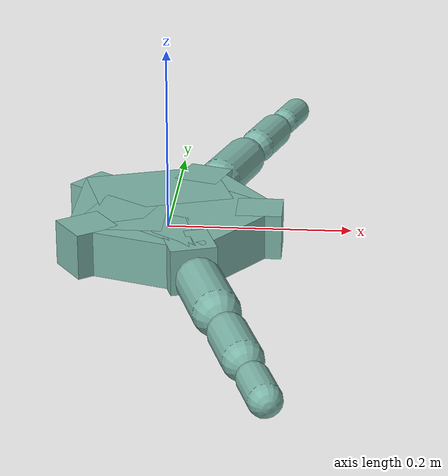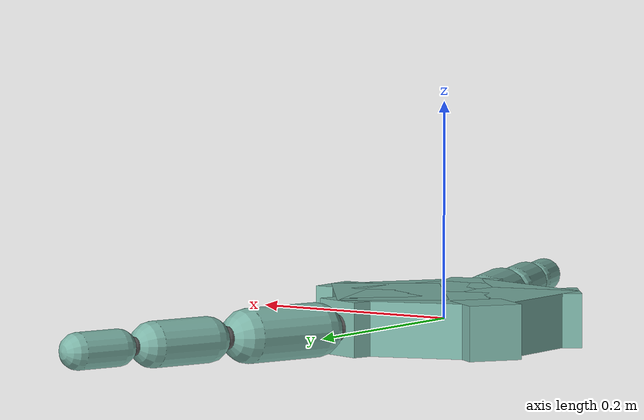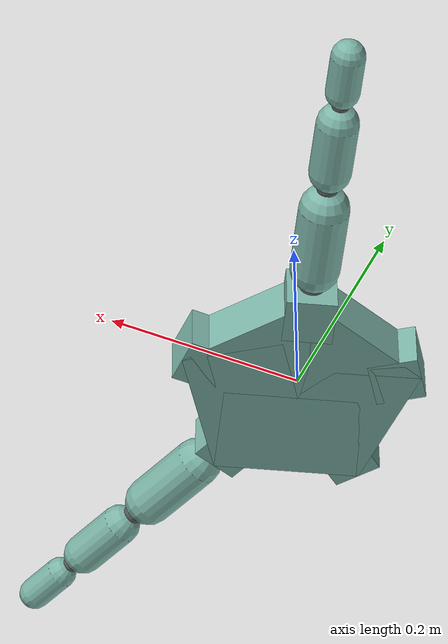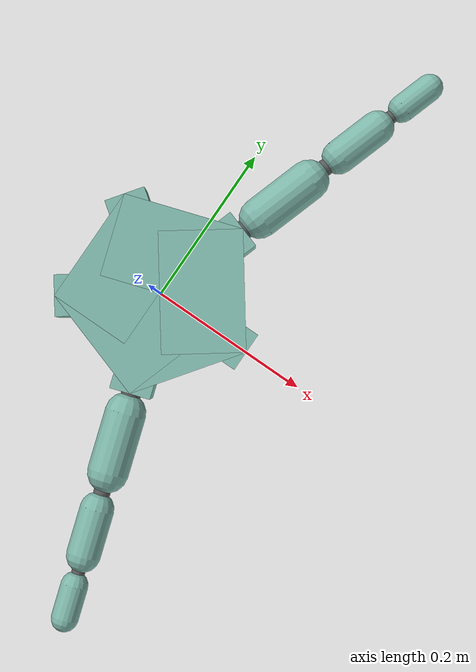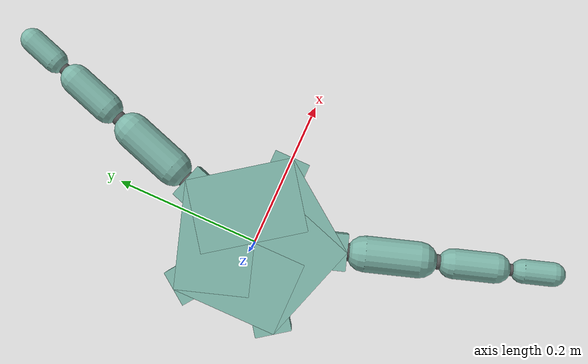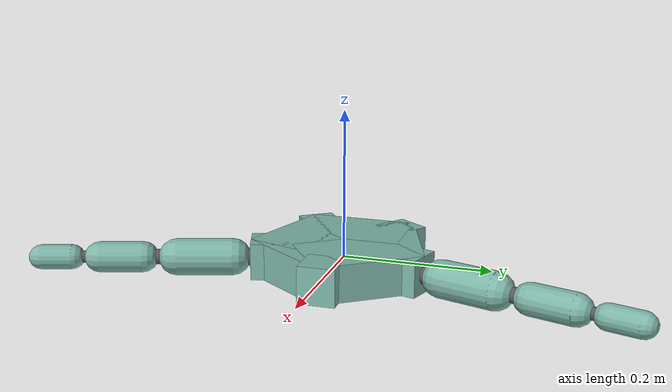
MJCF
<mujoco model="BrittleStarMorphology">
  <compiler angle="radian"/>
  <option density="1000" viscosity="0.00089999999999999998"/>
  <visual>
    <headlight ambient="0.40000000000000002 0.40000000000000002 0.40000000000000002" diffuse="0.80000000000000004 0.80000000000000004 0.80000000000000004" specular="0.10000000000000001 0.10000000000000001 0.10000000000000001"/>
  </visual>
  <default>
    <default class="/">
      <geom contype="1" conaffinity="0" condim="4" density="2000"/>
    </default>
  </default>
  <worldbody>
    <body name="central_disk" pos="0 0 0" euler="0 0 0">
      <geom name="central_disk_pentagon_side_0" class="/" type="box" contype="0" conaffinity="0" size="0.050563562148434216 0.073473156536559142 0.025000000000000001" rgba="0.49019607843137253 0.70980392156862748 0.6588235294117647 1" mass="0" pos="0.040906781074217108 0.029720516134223551 0" euler="0 0 0.62831853071795862"/>
      <geom name="central_disk_pentagon_side_1" class="/" type="box" contype="0" conaffinity="0" size="0.050563562148434216 0.073473156536559142 0.025000000000000001" rgba="0.49019607843137253 0.70980392156862748 0.6588235294117647 1" mass="0" pos="-0.015624999999999997 0.048088805268363337 0" euler="0 0 1.8849555921538759"/>
      <geom name="central_disk_pentagon_side_2" class="/" type="box" contype="0" conaffinity="0" size="0.050563562148434216 0.073473156536559142 0.025000000000000001" rgba="0.49019607843137253 0.70980392156862748 0.6588235294117647 1" mass="0" pos="-0.050563562148434216 6.1922504538568225e-18 0" euler="0 0 3.1415926535897931"/>
      <geom name="central_disk_pentagon_side_3" class="/" type="box" contype="0" conaffinity="0" size="0.050563562148434216 0.073473156536559142 0.025000000000000001" rgba="0.49019607843137253 0.70980392156862748 0.6588235294117647 1" mass="0" pos="-0.015625000000000007 -0.048088805268363337 0" euler="0 0 4.3982297150257104"/>
      <geom name="central_disk_pentagon_side_4" class="/" type="box" contype="0" conaffinity="0" size="0.050563562148434216 0.073473156536559142 0.025000000000000001" rgba="0.49019607843137253 0.70980392156862748 0.6588235294117647 1" mass="0" pos="0.040906781074217101 -0.029720516134223562 0" euler="0 0 5.6548667764616276"/>
      <geom name="central_disk_pentagon_collider" class="/" type="cylinder" contype="1" conaffinity="0" size="0.125 0.025000000000000001" rgba="0 0 0 0" pos="0 0 0" euler="0 0 0"/>
      <geom name="central_disk_arm_connector_0" class="/" type="box" contype="0" conaffinity="0" size="0.025000000000000001 0.025000000000000001 0.025000000000000001" rgba="0.49019607843137253 0.70980392156862748 0.6588235294117647 1" pos="0.10000000000000001 0 0" euler="0 0 0"/>
      <geom name="central_disk_arm_connector_1" class="/" type="box" contype="0" conaffinity="0" size="0.025000000000000001 0.025000000000000001 0.025000000000000001" rgba="0.49019607843137253 0.70980392156862748 0.6588235294117647 1" pos="0.030901699437494747 0.095105651629515356 0" euler="0 0 1.2566370614359172"/>
      <geom name="central_disk_arm_connector_2" class="/" type="box" contype="0" conaffinity="0" size="0.025000000000000001 0.025000000000000001 0.025000000000000001" rgba="0.49019607843137253 0.70980392156862748 0.6588235294117647 1" pos="-0.080901699437494742 0.058778525229247328 0" euler="0 0 2.5132741228718345"/>
      <geom name="central_disk_arm_connector_3" class="/" type="box" contype="0" conaffinity="0" size="0.025000000000000001 0.025000000000000001 0.025000000000000001" rgba="0.49019607843137253 0.70980392156862748 0.6588235294117647 1" pos="-0.080901699437494756 -0.058778525229247307 0" euler="0 0 3.7699111843077517"/>
      <geom name="central_disk_arm_connector_4" class="/" type="box" contype="0" conaffinity="0" size="0.025000000000000001 0.025000000000000001 0.025000000000000001" rgba="0.49019607843137253 0.70980392156862748 0.6588235294117647 1" pos="0.030901699437494726 -0.09510565162951537 0" euler="0 0 5.026548245743669"/>
      <body name="arm_0" pos="0.125 0 0" euler="0 0 0"/>
      <body name="arm_1" pos="0.038627124296868431 0.11888206453689419 0" euler="0 0 1.2566370614359172">
        <body name="arm_1_segment_0" pos="0 0 0" euler="0 0 0">
          <geom name="arm_1_segment_0_capsule" class="/" type="capsule" size="0.025000000000000001 0.037499999999999999" rgba="0.49019607843137253 0.70980392156862748 0.6588235294117647 1" pos="0.0625 0 0" euler="0 1.5707963267948966 0"/>
          <geom name="arm_1_segment_0_connector" class="/" type="sphere" contype="0" conaffinity="0" size="0.012500000000000001" rgba="0.34901960784313724 0.34901960784313724 0.34901960784313724 1" pos="0 0 0"/>
          <joint name="arm_1_segment_0_in_plane_joint" class="/" type="hinge" axis="0 0 1" limited="true" stiffness="0.01" range="-0.52359877559829882 0.52359877559829882" armature="0.02" damping="0.10000000000000001"/>
          <joint name="arm_1_segment_0_out_of_plane_joint" class="/" type="hinge" axis="0 -1 0" limited="true" stiffness="0.01" range="-0.52359877559829882 0.52359877559829882" armature="0.02" damping="0.10000000000000001"/>
          <site name="arm_1_segment_0_contact_site" class="/" type="capsule" group="3" rgba="0.71764705882352942 0.33725490196078434 0.34901960784313724 0.5" size="0.025250000000000002 0.037499999999999999" pos="0.0625 0 0" euler="0 1.5707963267948966 0"/>
          <body name="arm_1_segment_1" pos="0.125 0 0" euler="0 0 0">
            <geom name="arm_1_segment_1_capsule" class="/" type="capsule" size="0.020833333333333336 0.029166666666666667" rgba="0.49019607843137253 0.70980392156862748 0.6588235294117647 1" pos="0.050000000000000003 0 0" euler="0 1.5707963267948966 0"/>
            <geom name="arm_1_segment_1_connector" class="/" type="sphere" contype="0" conaffinity="0" size="0.010416666666666668" rgba="0.34901960784313724 0.34901960784313724 0.34901960784313724 1" pos="0 0 0"/>
            <joint name="arm_1_segment_1_in_plane_joint" class="/" type="hinge" axis="0 0 1" limited="true" stiffness="0.01" range="-0.52359877559829882 0.52359877559829882" armature="0.02" damping="0.10000000000000001"/>
            <joint name="arm_1_segment_1_out_of_plane_joint" class="/" type="hinge" axis="0 -1 0" limited="true" stiffness="0.01" range="-0.52359877559829882 0.52359877559829882" armature="0.02" damping="0.10000000000000001"/>
            <site name="arm_1_segment_1_contact_site" class="/" type="capsule" group="3" rgba="0.71764705882352942 0.33725490196078434 0.34901960784313724 0.5" size="0.02104166666666667 0.029166666666666667" pos="0.050000000000000003 0 0" euler="0 1.5707963267948966 0"/>
            <body name="arm_1_segment_2" pos="0.10000000000000001 0 0" euler="0 0 0">
              <geom name="arm_1_segment_2_capsule" class="/" type="capsule" size="0.01666666666666667 0.020833333333333336" rgba="0.49019607843137253 0.70980392156862748 0.6588235294117647 1" pos="0.037500000000000006 0 0" euler="0 1.5707963267948966 0"/>
              <geom name="arm_1_segment_2_connector" class="/" type="sphere" contype="0" conaffinity="0" size="0.008333333333333335" rgba="0.34901960784313724 0.34901960784313724 0.34901960784313724 1" pos="0 0 0"/>
              <joint name="arm_1_segment_2_in_plane_joint" class="/" type="hinge" axis="0 0 1" limited="true" stiffness="0.01" range="-0.52359877559829882 0.52359877559829882" armature="0.02" damping="0.10000000000000001"/>
              <joint name="arm_1_segment_2_out_of_plane_joint" class="/" type="hinge" axis="0 -1 0" limited="true" stiffness="0.01" range="-0.52359877559829882 0.52359877559829882" armature="0.02" damping="0.10000000000000001"/>
              <site name="arm_1_segment_2_contact_site" class="/" type="capsule" group="3" rgba="0.71764705882352942 0.33725490196078434 0.34901960784313724 0.5" size="0.016833333333333336 0.020833333333333336" pos="0.037500000000000006 0 0" euler="0 1.5707963267948966 0"/>
            </body>
          </body>
        </body>
      </body>
      <body name="arm_2" pos="-0.10112712429686842 0.073473156536559156 0" euler="0 0 2.5132741228718345"/>
      <body name="arm_3" pos="-0.10112712429686843 -0.073473156536559128 0" euler="0 0 3.7699111843077517"/>
      <body name="arm_4" pos="0.038627124296868404 -0.11888206453689421 0" euler="0 0 5.026548245743669">
        <body name="arm_4_segment_0" pos="0 0 0" euler="0 0 0">
          <geom name="arm_4_segment_0_capsule" class="/" type="capsule" size="0.025000000000000001 0.037499999999999999" rgba="0.49019607843137253 0.70980392156862748 0.6588235294117647 1" pos="0.0625 0 0" euler="0 1.5707963267948966 0"/>
          <geom name="arm_4_segment_0_connector" class="/" type="sphere" contype="0" conaffinity="0" size="0.012500000000000001" rgba="0.34901960784313724 0.34901960784313724 0.34901960784313724 1" pos="0 0 0"/>
          <joint name="arm_4_segment_0_in_plane_joint" class="/" type="hinge" axis="0 0 1" limited="true" stiffness="0.01" range="-0.52359877559829882 0.52359877559829882" armature="0.02" damping="0.10000000000000001"/>
          <joint name="arm_4_segment_0_out_of_plane_joint" class="/" type="hinge" axis="0 -1 0" limited="true" stiffness="0.01" range="-0.52359877559829882 0.52359877559829882" armature="0.02" damping="0.10000000000000001"/>
          <site name="arm_4_segment_0_contact_site" class="/" type="capsule" group="3" rgba="0.71764705882352942 0.33725490196078434 0.34901960784313724 0.5" size="0.025250000000000002 0.037499999999999999" pos="0.0625 0 0" euler="0 1.5707963267948966 0"/>
          <body name="arm_4_segment_1" pos="0.125 0 0" euler="0 0 0">
            <geom name="arm_4_segment_1_capsule" class="/" type="capsule" size="0.020833333333333336 0.029166666666666667" rgba="0.49019607843137253 0.70980392156862748 0.6588235294117647 1" pos="0.050000000000000003 0 0" euler="0 1.5707963267948966 0"/>
            <geom name="arm_4_segment_1_connector" class="/" type="sphere" contype="0" conaffinity="0" size="0.010416666666666668" rgba="0.34901960784313724 0.34901960784313724 0.34901960784313724 1" pos="0 0 0"/>
            <joint name="arm_4_segment_1_in_plane_joint" class="/" type="hinge" axis="0 0 1" limited="true" stiffness="0.01" range="-0.52359877559829882 0.52359877559829882" armature="0.02" damping="0.10000000000000001"/>
            <joint name="arm_4_segment_1_out_of_plane_joint" class="/" type="hinge" axis="0 -1 0" limited="true" stiffness="0.01" range="-0.52359877559829882 0.52359877559829882" armature="0.02" damping="0.10000000000000001"/>
            <site name="arm_4_segment_1_contact_site" class="/" type="capsule" group="3" rgba="0.71764705882352942 0.33725490196078434 0.34901960784313724 0.5" size="0.02104166666666667 0.029166666666666667" pos="0.050000000000000003 0 0" euler="0 1.5707963267948966 0"/>
            <body name="arm_4_segment_2" pos="0.10000000000000001 0 0" euler="0 0 0">
              <geom name="arm_4_segment_2_capsule" class="/" type="capsule" size="0.01666666666666667 0.020833333333333336" rgba="0.49019607843137253 0.70980392156862748 0.6588235294117647 1" pos="0.037500000000000006 0 0" euler="0 1.5707963267948966 0"/>
              <geom name="arm_4_segment_2_connector" class="/" type="sphere" contype="0" conaffinity="0" size="0.008333333333333335" rgba="0.34901960784313724 0.34901960784313724 0.34901960784313724 1" pos="0 0 0"/>
              <joint name="arm_4_segment_2_in_plane_joint" class="/" type="hinge" axis="0 0 1" limited="true" stiffness="0.01" range="-0.52359877559829882 0.52359877559829882" armature="0.02" damping="0.10000000000000001"/>
              <joint name="arm_4_segment_2_out_of_plane_joint" class="/" type="hinge" axis="0 -1 0" limited="true" stiffness="0.01" range="-0.52359877559829882 0.52359877559829882" armature="0.02" damping="0.10000000000000001"/>
              <site name="arm_4_segment_2_contact_site" class="/" type="capsule" group="3" rgba="0.71764705882352942 0.33725490196078434 0.34901960784313724 0.5" size="0.016833333333333336 0.020833333333333336" pos="0.037500000000000006 0 0" euler="0 1.5707963267948966 0"/>
            </body>
          </body>
        </body>
      </body>
      <camera name="side_camera" class="/" mode="track" pos="0 -2 2.5" quat="0.93969262078590843 0.34202014332566871 0 0"/>
    </body>
  </worldbody>
  <actuator>
    <position name="arm_1_segment_0_in_plane_joint_p_control" class="/" ctrllimited="true" forcelimited="true" ctrlrange="-0.52359877559829882 0.52359877559829882" forcerange="-5 5" joint="arm_1_segment_0_in_plane_joint" kp="50"/>
    <position name="arm_1_segment_0_out_of_plane_joint_p_control" class="/" ctrllimited="true" forcelimited="true" ctrlrange="-0.52359877559829882 0.52359877559829882" forcerange="-5 5" joint="arm_1_segment_0_out_of_plane_joint" kp="50"/>
    <position name="arm_1_segment_1_in_plane_joint_p_control" class="/" ctrllimited="true" forcelimited="true" ctrlrange="-0.52359877559829882 0.52359877559829882" forcerange="-4.166666666666667 4.166666666666667" joint="arm_1_segment_1_in_plane_joint" kp="50"/>
    <position name="arm_1_segment_1_out_of_plane_joint_p_control" class="/" ctrllimited="true" forcelimited="true" ctrlrange="-0.52359877559829882 0.52359877559829882" forcerange="-4.166666666666667 4.166666666666667" joint="arm_1_segment_1_out_of_plane_joint" kp="50"/>
    <position name="arm_1_segment_2_in_plane_joint_p_control" class="/" ctrllimited="true" forcelimited="true" ctrlrange="-0.52359877559829882 0.52359877559829882" forcerange="-3.3333333333333339 3.3333333333333339" joint="arm_1_segment_2_in_plane_joint" kp="50"/>
    <position name="arm_1_segment_2_out_of_plane_joint_p_control" class="/" ctrllimited="true" forcelimited="true" ctrlrange="-0.52359877559829882 0.52359877559829882" forcerange="-3.3333333333333339 3.3333333333333339" joint="arm_1_segment_2_out_of_plane_joint" kp="50"/>
    <position name="arm_4_segment_0_in_plane_joint_p_control" class="/" ctrllimited="true" forcelimited="true" ctrlrange="-0.52359877559829882 0.52359877559829882" forcerange="-5 5" joint="arm_4_segment_0_in_plane_joint" kp="50"/>
    <position name="arm_4_segment_0_out_of_plane_joint_p_control" class="/" ctrllimited="true" forcelimited="true" ctrlrange="-0.52359877559829882 0.52359877559829882" forcerange="-5 5" joint="arm_4_segment_0_out_of_plane_joint" kp="50"/>
    <position name="arm_4_segment_1_in_plane_joint_p_control" class="/" ctrllimited="true" forcelimited="true" ctrlrange="-0.52359877559829882 0.52359877559829882" forcerange="-4.166666666666667 4.166666666666667" joint="arm_4_segment_1_in_plane_joint" kp="50"/>
    <position name="arm_4_segment_1_out_of_plane_joint_p_control" class="/" ctrllimited="true" forcelimited="true" ctrlrange="-0.52359877559829882 0.52359877559829882" forcerange="-4.166666666666667 4.166666666666667" joint="arm_4_segment_1_out_of_plane_joint" kp="50"/>
    <position name="arm_4_segment_2_in_plane_joint_p_control" class="/" ctrllimited="true" forcelimited="true" ctrlrange="-0.52359877559829882 0.52359877559829882" forcerange="-3.3333333333333339 3.3333333333333339" joint="arm_4_segment_2_in_plane_joint" kp="50"/>
    <position name="arm_4_segment_2_out_of_plane_joint_p_control" class="/" ctrllimited="true" forcelimited="true" ctrlrange="-0.52359877559829882 0.52359877559829882" forcerange="-3.3333333333333339 3.3333333333333339" joint="arm_4_segment_2_out_of_plane_joint" kp="50"/>
  </actuator>
  <sensor>
    <framepos name="central_disk_framepos_sensor" objtype="xbody" objname="central_disk"/>
    <framequat name="central_disk_framequat_sensor" objtype="xbody" objname="central_disk"/>
    <framelinvel name="central_disk_framelinvel_sensor" objtype="xbody" objname="central_disk"/>
    <frameangvel name="central_disk_frameangvel_sensor" objtype="xbody" objname="central_disk"/>
    <framepos name="arm_1_segment_0_position_sensor" objtype="geom" objname="arm_1_segment_0_capsule"/>
    <jointpos name="arm_1_segment_0_in_plane_joint_jointpos_sensor" joint="arm_1_segment_0_in_plane_joint"/>
    <jointvel name="arm_1_segment_0_in_plane_joint_jointvel_sensor" joint="arm_1_segment_0_in_plane_joint"/>
    <jointactuatorfrc name="arm_1_segment_0_in_plane_joint_actuatorfrc_sensor" joint="arm_1_segment_0_in_plane_joint"/>
    <jointpos name="arm_1_segment_0_out_of_plane_joint_jointpos_sensor" joint="arm_1_segment_0_out_of_plane_joint"/>
    <jointvel name="arm_1_segment_0_out_of_plane_joint_jointvel_sensor" joint="arm_1_segment_0_out_of_plane_joint"/>
    <jointactuatorfrc name="arm_1_segment_0_out_of_plane_joint_actuatorfrc_sensor" joint="arm_1_segment_0_out_of_plane_joint"/>
    <actuatorfrc name="arm_1_segment_0_in_plane_joint_p_control_actuatorfrc_sensor" actuator="arm_1_segment_0_in_plane_joint_p_control"/>
    <actuatorfrc name="arm_1_segment_0_out_of_plane_joint_p_control_actuatorfrc_sensor" actuator="arm_1_segment_0_out_of_plane_joint_p_control"/>
    <touch name="arm_1_segment_0_contact_site_contact_sensor" site="arm_1_segment_0_contact_site"/>
    <framepos name="arm_1_segment_1_position_sensor" objtype="geom" objname="arm_1_segment_1_capsule"/>
    <jointpos name="arm_1_segment_1_in_plane_joint_jointpos_sensor" joint="arm_1_segment_1_in_plane_joint"/>
    <jointvel name="arm_1_segment_1_in_plane_joint_jointvel_sensor" joint="arm_1_segment_1_in_plane_joint"/>
    <jointactuatorfrc name="arm_1_segment_1_in_plane_joint_actuatorfrc_sensor" joint="arm_1_segment_1_in_plane_joint"/>
    <jointpos name="arm_1_segment_1_out_of_plane_joint_jointpos_sensor" joint="arm_1_segment_1_out_of_plane_joint"/>
    <jointvel name="arm_1_segment_1_out_of_plane_joint_jointvel_sensor" joint="arm_1_segment_1_out_of_plane_joint"/>
    <jointactuatorfrc name="arm_1_segment_1_out_of_plane_joint_actuatorfrc_sensor" joint="arm_1_segment_1_out_of_plane_joint"/>
    <actuatorfrc name="arm_1_segment_1_in_plane_joint_p_control_actuatorfrc_sensor" actuator="arm_1_segment_1_in_plane_joint_p_control"/>
    <actuatorfrc name="arm_1_segment_1_out_of_plane_joint_p_control_actuatorfrc_sensor" actuator="arm_1_segment_1_out_of_plane_joint_p_control"/>
    <touch name="arm_1_segment_1_contact_site_contact_sensor" site="arm_1_segment_1_contact_site"/>
    <framepos name="arm_1_segment_2_position_sensor" objtype="geom" objname="arm_1_segment_2_capsule"/>
    <jointpos name="arm_1_segment_2_in_plane_joint_jointpos_sensor" joint="arm_1_segment_2_in_plane_joint"/>
    <jointvel name="arm_1_segment_2_in_plane_joint_jointvel_sensor" joint="arm_1_segment_2_in_plane_joint"/>
    <jointactuatorfrc name="arm_1_segment_2_in_plane_joint_actuatorfrc_sensor" joint="arm_1_segment_2_in_plane_joint"/>
    <jointpos name="arm_1_segment_2_out_of_plane_joint_jointpos_sensor" joint="arm_1_segment_2_out_of_plane_joint"/>
    <jointvel name="arm_1_segment_2_out_of_plane_joint_jointvel_sensor" joint="arm_1_segment_2_out_of_plane_joint"/>
    <jointactuatorfrc name="arm_1_segment_2_out_of_plane_joint_actuatorfrc_sensor" joint="arm_1_segment_2_out_of_plane_joint"/>
    <actuatorfrc name="arm_1_segment_2_in_plane_joint_p_control_actuatorfrc_sensor" actuator="arm_1_segment_2_in_plane_joint_p_control"/>
    <actuatorfrc name="arm_1_segment_2_out_of_plane_joint_p_control_actuatorfrc_sensor" actuator="arm_1_segment_2_out_of_plane_joint_p_control"/>
    <touch name="arm_1_segment_2_contact_site_contact_sensor" site="arm_1_segment_2_contact_site"/>
    <framepos name="arm_4_segment_0_position_sensor" objtype="geom" objname="arm_4_segment_0_capsule"/>
    <jointpos name="arm_4_segment_0_in_plane_joint_jointpos_sensor" joint="arm_4_segment_0_in_plane_joint"/>
    <jointvel name="arm_4_segment_0_in_plane_joint_jointvel_sensor" joint="arm_4_segment_0_in_plane_joint"/>
    <jointactuatorfrc name="arm_4_segment_0_in_plane_joint_actuatorfrc_sensor" joint="arm_4_segment_0_in_plane_joint"/>
    <jointpos name="arm_4_segment_0_out_of_plane_joint_jointpos_sensor" joint="arm_4_segment_0_out_of_plane_joint"/>
    <jointvel name="arm_4_segment_0_out_of_plane_joint_jointvel_sensor" joint="arm_4_segment_0_out_of_plane_joint"/>
    <jointactuatorfrc name="arm_4_segment_0_out_of_plane_joint_actuatorfrc_sensor" joint="arm_4_segment_0_out_of_plane_joint"/>
    <actuatorfrc name="arm_4_segment_0_in_plane_joint_p_control_actuatorfrc_sensor" actuator="arm_4_segment_0_in_plane_joint_p_control"/>
    <actuatorfrc name="arm_4_segment_0_out_of_plane_joint_p_control_actuatorfrc_sensor" actuator="arm_4_segment_0_out_of_plane_joint_p_control"/>
    <touch name="arm_4_segment_0_contact_site_contact_sensor" site="arm_4_segment_0_contact_site"/>
    <framepos name="arm_4_segment_1_position_sensor" objtype="geom" objname="arm_4_segment_1_capsule"/>
    <jointpos name="arm_4_segment_1_in_plane_joint_jointpos_sensor" joint="arm_4_segment_1_in_plane_joint"/>
    <jointvel name="arm_4_segment_1_in_plane_joint_jointvel_sensor" joint="arm_4_segment_1_in_plane_joint"/>
    <jointactuatorfrc name="arm_4_segment_1_in_plane_joint_actuatorfrc_sensor" joint="arm_4_segment_1_in_plane_joint"/>
    <jointpos name="arm_4_segment_1_out_of_plane_joint_jointpos_sensor" joint="arm_4_segment_1_out_of_plane_joint"/>
    <jointvel name="arm_4_segment_1_out_of_plane_joint_jointvel_sensor" joint="arm_4_segment_1_out_of_plane_joint"/>
    <jointactuatorfrc name="arm_4_segment_1_out_of_plane_joint_actuatorfrc_sensor" joint="arm_4_segment_1_out_of_plane_joint"/>
    <actuatorfrc name="arm_4_segment_1_in_plane_joint_p_control_actuatorfrc_sensor" actuator="arm_4_segment_1_in_plane_joint_p_control"/>
    <actuatorfrc name="arm_4_segment_1_out_of_plane_joint_p_control_actuatorfrc_sensor" actuator="arm_4_segment_1_out_of_plane_joint_p_control"/>
    <touch name="arm_4_segment_1_contact_site_contact_sensor" site="arm_4_segment_1_contact_site"/>
    <framepos name="arm_4_segment_2_position_sensor" objtype="geom" objname="arm_4_segment_2_capsule"/>
    <jointpos name="arm_4_segment_2_in_plane_joint_jointpos_sensor" joint="arm_4_segment_2_in_plane_joint"/>
    <jointvel name="arm_4_segment_2_in_plane_joint_jointvel_sensor" joint="arm_4_segment_2_in_plane_joint"/>
    <jointactuatorfrc name="arm_4_segment_2_in_plane_joint_actuatorfrc_sensor" joint="arm_4_segment_2_in_plane_joint"/>
    <jointpos name="arm_4_segment_2_out_of_plane_joint_jointpos_sensor" joint="arm_4_segment_2_out_of_plane_joint"/>
    <jointvel name="arm_4_segment_2_out_of_plane_joint_jointvel_sensor" joint="arm_4_segment_2_out_of_plane_joint"/>
    <jointactuatorfrc name="arm_4_segment_2_out_of_plane_joint_actuatorfrc_sensor" joint="arm_4_segment_2_out_of_plane_joint"/>
    <actuatorfrc name="arm_4_segment_2_in_plane_joint_p_control_actuatorfrc_sensor" actuator="arm_4_segment_2_in_plane_joint_p_control"/>
    <actuatorfrc name="arm_4_segment_2_out_of_plane_joint_p_control_actuatorfrc_sensor" actuator="arm_4_segment_2_out_of_plane_joint_p_control"/>
    <touch name="arm_4_segment_2_contact_site_contact_sensor" site="arm_4_segment_2_contact_site"/>
  </sensor>
</mujoco>
